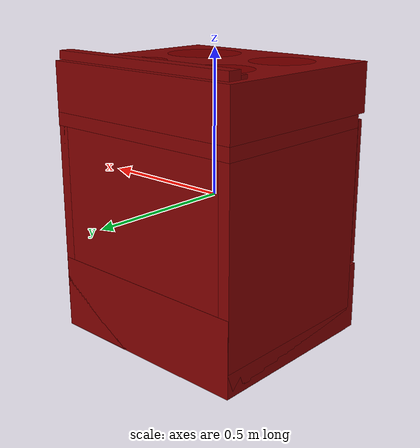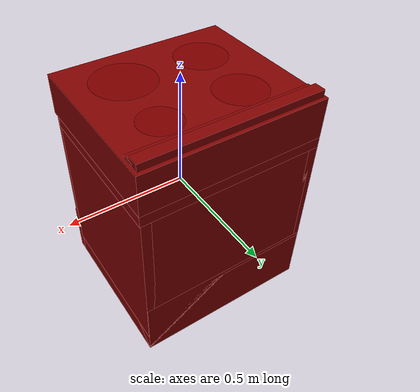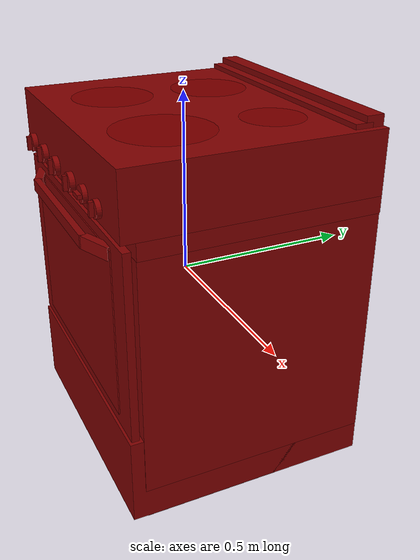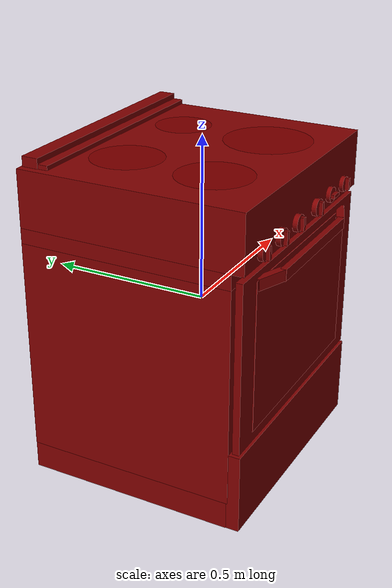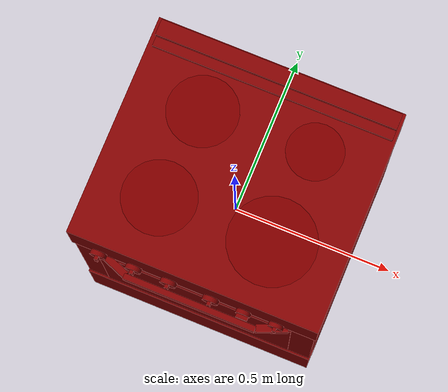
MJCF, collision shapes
<?xml version='1.0' encoding='UTF-8'?>
<mujoco model="model">
  <option timestep="0.002" gravity="0.0 0.0 -9.81"/>
  <compiler angle="radian"/>
  <asset>
    <mesh file="visuals/knob_front_left.obj" name="knob_front_left_vis"/>
    <mesh file="visuals/knob_front_right.obj" name="knob_front_right_vis"/>
    <mesh file="visuals/knob_rear_left.obj" name="knob_rear_left_vis"/>
    <mesh file="visuals/knob_rear_right.obj" name="knob_rear_right_vis"/>
    <mesh file="visuals/Body001.obj" name="Body001_vis"/>
    <mesh file="visuals/Door001.obj" name="Door001_vis"/>
    <mesh file="visuals/Door001_Clear.obj" name="Door001_Clear_vis"/>
    <mesh file="visuals/Knob001.obj" name="Knob001_vis"/>
    <mesh file="visuals/Knob002.obj" name="Knob002_vis"/>
    <mesh file="visuals/Shelf001.obj" name="Shelf001_vis"/>
    <texture file="visuals/T_BC001.png" name="Body001_material" type="2d"/>
    <material name="Body001_material" rgba="1 1 1 1.0" texture="Body001_material" shininess="0.4472135901451111" specular="1.5"/>
    <texture file="visuals/T_BC001.png" name="knob_front_left_material" type="2d"/>
    <material name="knob_front_left_material" rgba="1 1 1 1.0" texture="knob_front_left_material" shininess="0.4472135901451111" specular="0.3103448502657381"/>
    <texture file="visuals/T_BC001.png" name="knob_front_right_material" type="2d"/>
    <material name="knob_front_right_material" rgba="1 1 1 1.0" texture="knob_front_right_material" shininess="0.4472135901451111" specular="0.3103448502657381"/>
    <texture file="visuals/T_BC001.png" name="knob_rear_left_material" type="2d"/>
    <material name="knob_rear_left_material" rgba="1 1 1 1.0" texture="knob_rear_left_material" shininess="0.4472135901451111" specular="0.3103448502657381"/>
    <texture file="visuals/T_BC001.png" name="knob_rear_right_material" type="2d"/>
    <material name="knob_rear_right_material" rgba="1 1 1 1.0" texture="knob_rear_right_material" shininess="0.4472135901451111" specular="0.3103448502657381"/>
    <texture file="visuals/T_BC001.png" name="Door001_material" type="2d"/>
    <material name="Door001_material" rgba="1 1 1 1.0" texture="Door001_material" shininess="0.4472135901451111" specular="0.6"/>
    <texture file="visuals/T_BC001.png" name="Door001_Clear_material" type="2d"/>
    <material name="Door001_Clear_material" rgba="1 1 1 0.5" texture="Door001_Clear_material" shininess="0.4472135901451111" specular="0.3103448502657381"/>
    <texture file="visuals/T_BC001.png" name="Knob001_material" type="2d"/>
    <material name="Knob001_material" rgba="1 1 1 1.0" texture="Knob001_material" shininess="0.4472135901451111" specular="0.3103448502657381"/>
    <texture file="visuals/T_BC001.png" name="Knob002_material" type="2d"/>
    <material name="Knob002_material" rgba="1 1 1 1.0" texture="Knob002_material" shininess="0.4472135901451111" specular="0.3103448502657381"/>
    <texture file="visuals/T_BC001.png" name="Shelf001_material" type="2d"/>
    <material name="Shelf001_material" rgba="1 1 1 1.0" texture="Shelf001_material" shininess="0.4472135901451111" specular="2"/>
  </asset>
  <default>
    <default class="visual">
      <geom conaffinity="0" contype="0" group="1" type="mesh"/>
    </default>
    <default class="collision">
      <geom group="0" rgba="0.5 0 0 0.5"/>
    </default>
    <default class="spawn">
      <geom group="0" rgba="1 1 1 0.5" contype="0" conaffinity="0"/>
      <site group="0" rgba="1 1 1 0.5"/>
    </default>
    <default class="region">
      <geom group="1" conaffinity="0" contype="0" rgba="0 1 0 0"/>
    </default>
  </default>
  <worldbody>
    <body>
      <body name="object">
        <geom mesh="Body001_vis" type="mesh" solimp="0.998 0.998 0.001" solref="0.001 1" friction="0.95 0.3 0.1" class="visual" material="Body001_material"/>
        <geom class="collision" type="box" pos="-0.00029236997943371534 0.019169792532920837 0.37240317463874817" size="0.37908416986465454 0.33648955821990967 0.08469036221504211" quat="1.0 0.0 0.0 0.0" density="1000.0"/>
        <geom class="collision" type="box" pos="-0.00029236997943371534 0.03675464168190956 0.26522576808929443" size="0.37908416986465454 0.31890466809272766 0.02249930612742901" quat="1.0 0.0 0.0 0.0" density="1000.0"/>
        <geom class="collision" type="box" pos="-0.3586403429508209 0.03675464168190956 -0.08017957955598831" size="0.020736195147037506 0.31890466809272766 0.32331928610801697" quat="1.0 0.0 0.0 0.0" density="1000.0"/>
        <geom class="collision" type="box" pos="0.35638871788978577 0.03675464168190956 -0.08017957955598831" size="0.02000848576426506 0.31890466809272766 0.32331928610801697" quat="1.0 0.0 0.0 0.0" density="1000.0"/>
        <geom class="collision" type="box" pos="-3.012106753885746e-05 0.29214009642601013 -0.0793716236948967" size="0.35413306951522827 0.06351916491985321 0.32251134514808655" quat="1.0 0.0 0.0 0.0" density="1000.0"/>
        <geom class="collision" type="box" pos="-0.001352792140096426 0.019630566239356995 -0.36553964018821716" size="0.3763732612133026 0.3365183472633362 0.12004053592681885" quat="1.0 0.0 0.0 0.0" density="1000.0"/>
        <geom class="collision" type="box" pos="0.0019729507621377707 0.32042592763900757 0.475263386964798" size="0.36770904064178467 0.024092672392725945 0.014608043245971203" quat="1.0 0.0 0.0 0.0" density="1000.0"/>
        <geom class="collision" type="box" pos="0.0030879739206284285 0.29076412320137024 0.4671143889427185" size="0.3665943741798401 0.024092696607112885 0.0064590973779559135" quat="1.0 0.0 0.0 0.0" density="1000.0"/>
        <geom class="collision" type="box" pos="0.3295269012451172 -0.02327657677233219 0.008062951266765594" size="0.005280005745589733 0.25722238421440125 0.005280005745589733" quat="1.0 0.0 0.0 0.0" density="1000.0"/>
        <geom class="collision" type="box" pos="-0.33164557814598083 -0.02327657677233219 0.008062951266765594" size="0.005280005745589733 0.25722238421440125 0.005280005745589733" quat="1.0 0.0 0.0 0.0" density="1000.0"/>
        <geom class="collision" type="box" pos="-0.001352792140096426 0.03916733339428902 -0.3575747013092041" size="0.3763732612133026 0.31698158383369446 0.12932536005973816" quat="1.0 0.0 0.0 0.0" density="1000.0"/>
        <body name="knob_front_left">
          <joint axis="0.0 -1.0 0.0" pos="-0.28917333483695984 -0.3214743733406067 0.3250948488712311" limited="true" name="knob_front_left_joint" range="0.0 3.4033920413889422" type="hinge" damping="0.05" armature="0.001"/>
          <geom mesh="knob_front_left_vis" type="mesh" solimp="0.998 0.998 0.001" solref="0.001 1" friction="0.95 0.3 0.1" class="visual" material="knob_front_left_material"/>
          <geom class="collision" type="cylinder" pos="-0.2892439663410187 -0.32711923122406006 0.3251371681690216" size="0.02481306903064251 0.007268550340086222" quat="0.7071067094802856 0.70710688829422 0.0 0.0" density="1000.0"/>
          <geom class="collision" type="box" pos="-0.28920984268188477 -0.3393794298171997 0.32416167855262756" size="0.005335498601198196 0.006057772785425186 0.019379813224077225" quat="1.0 0.0 0.0 0.0" density="1000.0" name="knob_front_left_main"/>
        </body>
        <body name="knob_front_right">
          <joint axis="0.0 -1.0 0.0" pos="0.058059342205524445 -0.3214743733406067 0.3250751495361328" limited="true" name="knob_front_right_joint" range="0.0 3.4033920413889422" type="hinge" damping="0.05" armature="0.001"/>
          <geom mesh="knob_front_right_vis" type="mesh" solimp="0.998 0.998 0.001" solref="0.001 1" friction="0.95 0.3 0.1" class="visual" material="knob_front_right_material"/>
          <geom class="collision" type="cylinder" pos="0.05804438889026642 -0.32711923122406006 0.3251371681690216" size="0.02481306903064251 0.007268550340086222" quat="0.7071067094802856 0.70710688829422 0.0 0.0" density="1000.0"/>
          <geom class="collision" type="box" pos="0.057761818170547485 -0.3393794298171997 0.32416167855262756" size="0.005335498601198196 0.006057772785425186 0.019379813224077225" quat="1.0 0.0 0.0 0.0" density="1000.0" name="knob_front_right_main"/>
        </body>
        <body name="knob_rear_left">
          <joint axis="0.0 -1.0 0.0" pos="-0.18045377731323242 -0.3214743733406067 0.3250948488712311" limited="true" name="knob_rear_left_joint" range="0.0 3.4033920413889422" type="hinge" damping="0.05" armature="0.001"/>
          <geom mesh="knob_rear_left_vis" type="mesh" solimp="0.998 0.998 0.001" solref="0.001 1" friction="0.95 0.3 0.1" class="visual" material="knob_rear_left_material"/>
          <geom class="collision" type="cylinder" pos="-0.1804448962211609 -0.32711923122406006 0.3251371681690216" size="0.02481306903064251 0.007268550340086222" quat="0.7071067094802856 0.70710688829422 0.0 0.0" density="1000.0"/>
          <geom class="collision" type="box" pos="-0.1805378645658493 -0.3393794298171997 0.32416167855262756" size="0.005335498601198196 0.006057772785425186 0.019379813224077225" quat="1.0 0.0 0.0 0.0" density="1000.0" name="knob_rear_left_main"/>
        </body>
        <body name="knob_rear_right">
          <joint axis="0.0 -1.0 0.0" pos="-0.07208241522312164 -0.3214743733406067 0.3250751495361328" limited="true" name="knob_rear_right_joint" range="0.0 3.4033920413889422" type="hinge" damping="0.05" armature="0.001"/>
          <geom mesh="knob_rear_right_vis" type="mesh" solimp="0.998 0.998 0.001" solref="0.001 1" friction="0.95 0.3 0.1" class="visual" material="knob_rear_right_material"/>
          <geom class="collision" type="cylinder" pos="-0.07212954014539719 -0.32711923122406006 0.3251371681690216" size="0.02481306903064251 0.007268550340086222" quat="0.7071067094802856 0.70710688829422 0.0 0.0" density="1000.0"/>
          <geom class="collision" type="box" pos="-0.07221609354019165 -0.3393794298171997 0.32416167855262756" size="0.005335498601198196 0.006057772785425186 0.019379813224077225" quat="1.0 0.0 0.0 0.0" density="1000.0" name="knob_rear_right_main"/>
        </body>
        <body name="Door001">
          <joint axis="1.0 0.0 0.0" pos="-3.955841020797379e-05 -0.3183262050151825 -0.23865897953510284" limited="true" name="Door001_joint" range="0.0 1.5707963267948966" type="hinge" damping="1" frictionloss="1" armature=".01" stiffness="0.05"/>
          <geom mesh="Door001_vis" type="mesh" solimp="0.998 0.998 0.001" solref="0.001 1" friction="0.95 0.3 0.1" class="visual" material="Door001_material"/>
          <geom class="collision" type="box" pos="-0.0008101159473881125 -0.3019765317440033 0.013922004029154778" size="0.37366747856140137 0.010360410436987877 0.25258105993270874" quat="1.0 0.0 0.0 0.0" density="1000.0"/>
          <geom class="collision" type="box" pos="-0.0021934497635811567 -0.3471948206424713 0.23238277435302734" size="0.20576129853725433 0.008701834827661514 0.01643734984099865" quat="1.0 0.0 0.0 0.0" density="1000.0"/>
          <geom class="collision" type="box" pos="0.2474578619003296 -0.3263125419616699 0.23238277435302734" size="0.04739469289779663 0.01119912974536419 0.016437169164419174" quat="0.9820809364318848 0.0 0.0 0.1884595900774002" density="1000.0"/>
          <geom class="collision" type="box" pos="-0.247494176030159 -0.3260935842990875 0.23238277435302734" size="0.04714091122150421 0.01119912974536419 0.016437169164419174" quat="1.9142196094890096e-07 0.9831273555755615 -0.18292252719402313 -3.5616331217624975e-08" density="1000.0"/>
          <body name="Door001_Clear">
            <geom mesh="Door001_Clear_vis" type="mesh" solimp="0.998 0.998 0.001" solref="0.001 1" friction="0.95 0.3 0.1" class="visual" material="Door001_Clear_material"/>
            <geom class="collision" type="box" pos="-0.00023322284687310457 -0.3160306513309479 0.021325405687093735" size="0.30270999670028687 0.001591252046637237 0.22306351363658905" quat="1.0 0.0 0.0 0.0" density="1000.0"/>
          </body>
        </body>
        <body name="Knob001">
          <joint axis="0.0 1.0 0.0" pos="0.15891048312187195 -0.32153740525245667 0.32938167452812195" limited="true" name="Knob001_joint" range="0.0 5.235987755982989" type="hinge" damping="0.05" armature="0.001"/>
          <geom mesh="Knob001_vis" type="mesh" solimp="0.998 0.998 0.001" solref="0.001 1" friction="0.95 0.3 0.1" class="visual" material="Knob001_material"/>
          <geom class="collision" type="cylinder" pos="0.15881851315498352 -0.3270561993122101 0.32952070236206055" size="0.022691307589411736 0.006290372461080551" quat="0.7071067094802856 0.70710688829422 0.0 0.0" density="1000.0"/>
          <geom class="collision" type="box" pos="0.15931719541549683 -0.3388645052909851 0.32946375012397766" size="0.005335498601198196 0.006057772785425186 0.01776191219687462" quat="0.7071068286895752 0.0 -0.7071067690849304 0.0" density="1000.0"/>
        </body>
        <body name="Knob002">
          <joint axis="0.0 1.0 0.0" pos="0.2586406171321869 -0.32153740525245667 0.32938167452812195" limited="true" name="Knob002_joint" range="0.0 5.585053606381854" type="hinge" damping="0.05" armature="0.001"/>
          <geom mesh="Knob002_vis" type="mesh" solimp="0.998 0.998 0.001" solref="0.001 1" friction="0.95 0.3 0.1" class="visual" material="Knob002_material"/>
          <geom class="collision" type="cylinder" pos="0.25857654213905334 -0.3270561993122101 0.32952070236206055" size="0.022691307589411736 0.006290372461080551" quat="0.7071067094802856 0.70710688829422 0.0 0.0" density="1000.0"/>
          <geom class="collision" type="box" pos="0.2584940195083618 -0.3388645052909851 0.3310185372829437" size="0.005335498601198196 0.006057772785425186 0.01776191219687462" quat="1.0 0.0 0.0 0.0" density="1000.0"/>
        </body>
        <body name="Shelf001">
          <joint axis="0.0 -1.0 0.0" pos="-0.0006190836429595947 -0.0014598965644836426 0.01777859590947628" limited="true" name="Shelf001_joint" range="0.0 0.3" type="slide" damping="1" frictionloss="1" armature=".01" stiffness="0.05"/>
          <geom mesh="Shelf001_vis" type="mesh" solimp="0.998 0.998 0.001" solref="0.001 1" friction="0.95 0.3 0.1" class="visual" material="Shelf001_material"/>
          <geom class="collision" type="box" pos="-0.0008412456372752786 -0.0012574363499879837 0.019226696342229843" size="0.33493608236312866 0.2111724466085434 0.005375207401812077" quat="1.0 0.0 0.0 0.0" density="1000.0"/>
        </body>
        <geom class="region" name="reg_int" type="box" pos="-0.0011193305253982544 -0.027223125100135803 0.006062924861907959" size="0.3387463837862015 0.2577769607305527 0.23637129366397858"/>
        <site type="cylinder" rgba="0.5 0 0 0.5" size="0.1062222570180893 0.0001" pos="-0.15856674313545227 0.14642590284347534 0.4570840001106262" name="burner_on_rear_left"/>
        <site type="cylinder" rgba="0.5 0 0 0.5" size="0.11017764359712601 0.0001" pos="-0.17605026066303253 -0.12951138615608215 0.4570840001106262" name="burner_on_front_left"/>
        <site type="cylinder" rgba="0.5 0 0 0.5" size="0.13038243353366852 0.0001" pos="0.1641087830066681 -0.12572431564331055 0.4570840001106262" name="burner_on_front_right"/>
        <site type="cylinder" rgba="0.5 0 0 0.5" size="0.08466193825006485 0.0001" pos="0.1798996925354004 0.15785221755504608 0.4570840001106262" name="burner_on_rear_right"/>
        <site name="burner_rear_left_place_site" type="cylinder" rgba="0.5 0 0 0" size="0.1062222570180893 4.999999873689376e-05" pos="-0.15856674313545227 0.14642590284347534 0.4570840001106262"/>
        <site name="burner_front_left_place_site" type="cylinder" rgba="0.5 0 0 0" size="0.11017764359712601 4.999999873689376e-05" pos="-0.17605026066303253 -0.12951138615608215 0.4570840001106262"/>
        <site name="burner_front_right_place_site" type="cylinder" rgba="0.5 0 0 0" size="0.13038243353366852 4.999999873689376e-05" pos="0.1641087830066681 -0.12572431564331055 0.4570840001106262"/>
        <site name="burner_rear_right_place_site" type="cylinder" rgba="0.5 0 0 0" size="0.08466193825006485 4.999999873689376e-05" pos="0.1798996925354004 0.15785221755504608 0.4570840001106262"/>
        <geom class="region" name="reg_main" type="box" pos="-7.450580596923828e-09 0.019144684076309204 -0.013438642024993896" size="0.379707396030426 0.33747079968452454 0.47530001401901245"/>
      </body>
    </body>
  </worldbody>
  <actuator>
    <motor name="knob_front_left_joint_actuator" joint="knob_front_left_joint" gear="10"/>
    <motor name="knob_front_right_joint_actuator" joint="knob_front_right_joint" gear="10"/>
    <motor name="knob_rear_left_joint_actuator" joint="knob_rear_left_joint" gear="10"/>
    <motor name="knob_rear_right_joint_actuator" joint="knob_rear_right_joint" gear="10"/>
    <motor name="Door001_joint_actuator" joint="Door001_joint" gear="50"/>
    <motor name="Knob001_joint_actuator" joint="Knob001_joint" gear="50"/>
    <motor name="Knob002_joint_actuator" joint="Knob002_joint" gear="50"/>
    <motor name="Shelf001_joint_actuator" joint="Shelf001_joint" gear="50"/>
  </actuator>
</mujoco>
